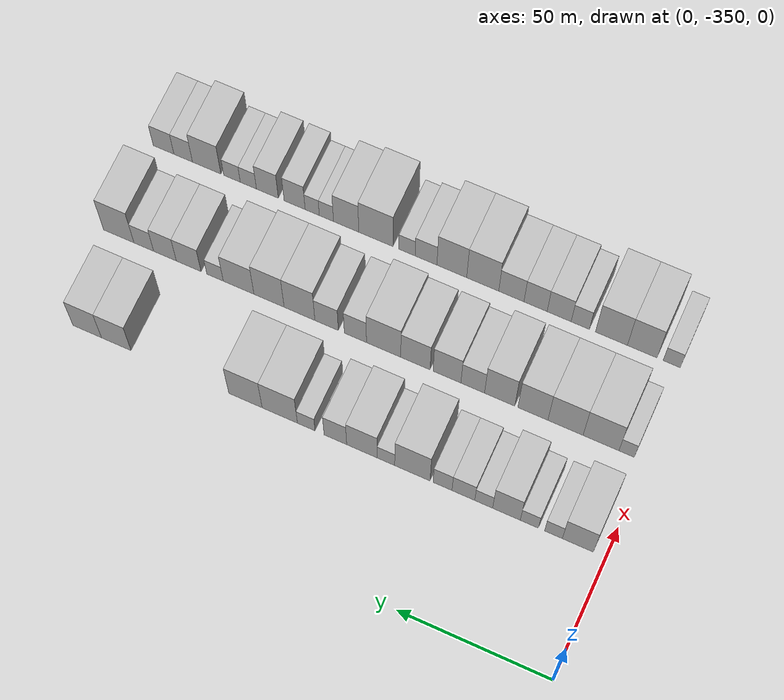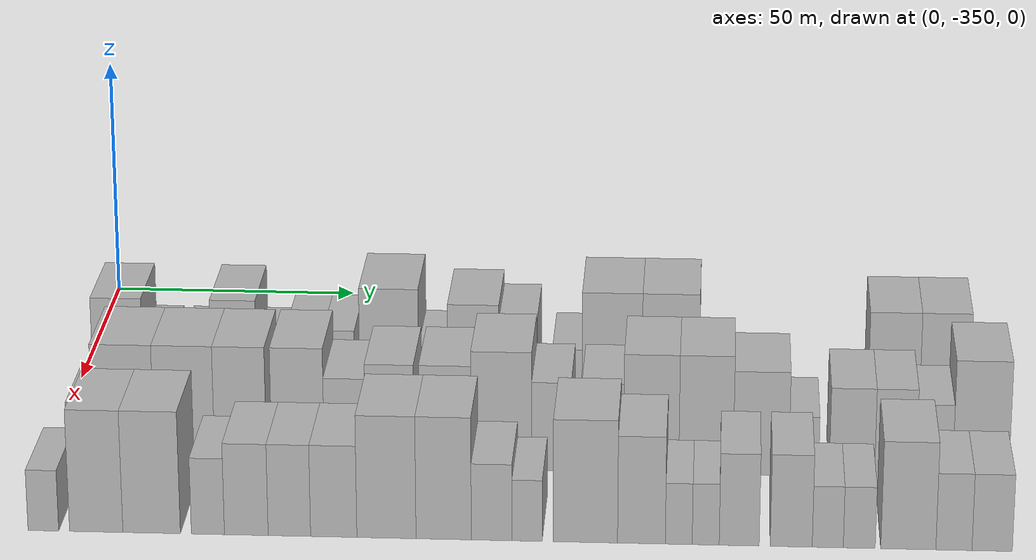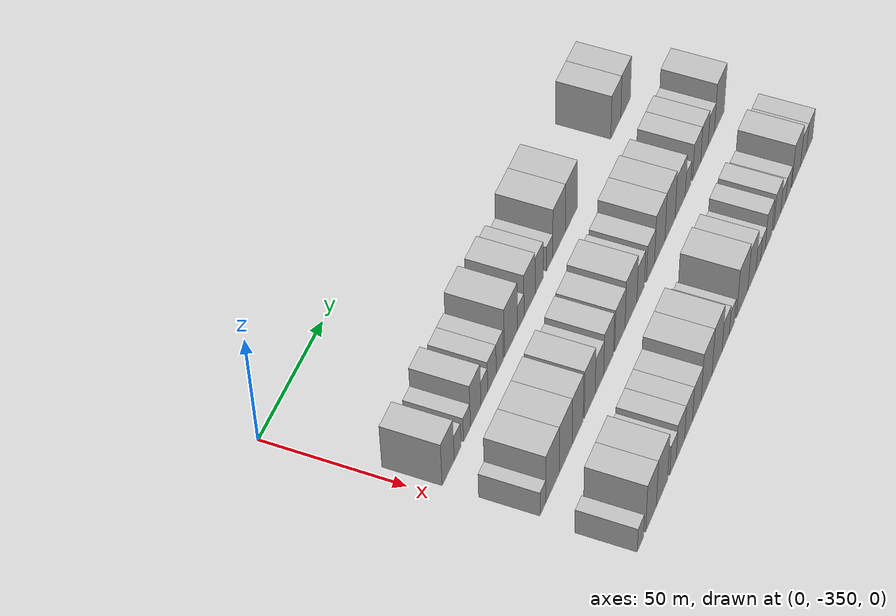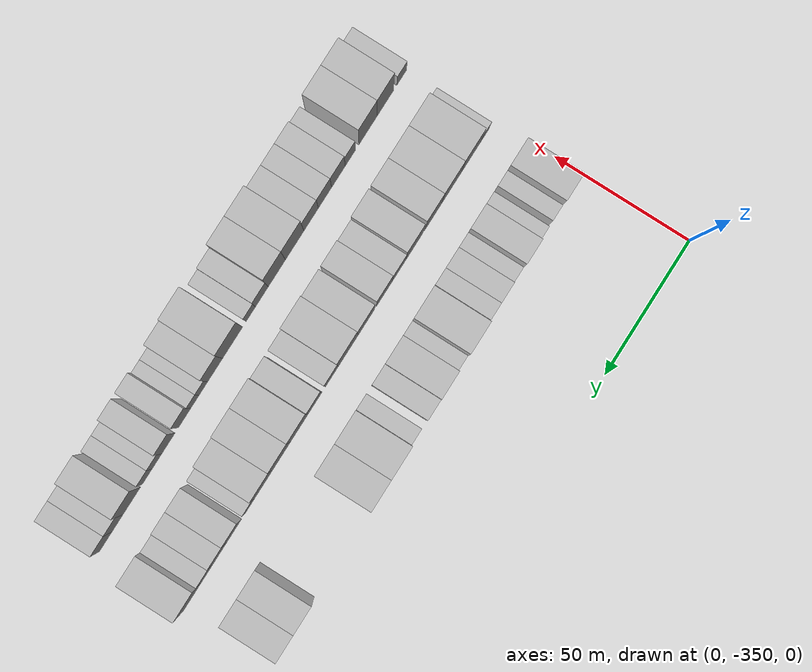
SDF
<sdf version="1.6">
 <world name="default">
  <model name="building_1">
   <static>1</static>
   <pose>50.0000 -341.0007 0 0.000000 0.000000 0.000000</pose>
   <link name="link">
    <pose>0 0 10.50 0 0 0</pose>
    <collision name="collision"><geometry><box><size>20.0000 9.9987 21.0000</size></box></geometry></collision>
    <visual name="visual">
     <cast_shadows>0</cast_shadows>
     <geometry><box><size>20.0000 9.9987 21.0000</size></box></geometry>
     <material>
      <script>
       <uri>model://HANNAS_wall/materials/scripts</uri>
       <uri>model://HANNAS_wall/materials/textures</uri>
       <name>vrc/HANNAS_wall</name>
      </script>
     </material>
    </visual>
   </link>
  </model>
  <model name="building_2">
   <static>1</static>
   <pose>50.0000 -333.1451 0 0.000000 0.000000 0.000000</pose>
   <link name="link">
    <pose>0 0 6.00 0 0 0</pose>
    <collision name="collision"><geometry><box><size>20.0000 5.7126 12.0000</size></box></geometry></collision>
    <visual name="visual">
     <cast_shadows>0</cast_shadows>
     <geometry><box><size>20.0000 5.7126 12.0000</size></box></geometry>
     <material>
      <script>
       <uri>model://HANNAS_wall/materials/scripts</uri>
       <uri>model://HANNAS_wall/materials/textures</uri>
       <name>vrc/HANNAS_wall</name>
      </script>
     </material>
    </visual>
   </link>
  </model>
  <model name="building_3">
   <static>1</static>
   <pose>50.0000 -325.3495 0 0.000000 0.000000 0.000000</pose>
   <link name="link">
    <pose>0 0 6.00 0 0 0</pose>
    <collision name="collision"><geometry><box><size>20.0000 5.8786 12.0000</size></box></geometry></collision>
    <visual name="visual">
     <cast_shadows>0</cast_shadows>
     <geometry><box><size>20.0000 5.8786 12.0000</size></box></geometry>
     <material>
      <script>
       <uri>model://HANNAS_wall/materials/scripts</uri>
       <uri>model://HANNAS_wall/materials/textures</uri>
       <name>vrc/HANNAS_wall</name>
      </script>
     </material>
    </visual>
   </link>
  </model>
  <model name="building_4">
   <static>1</static>
   <pose>50.0000 -317.9220 0 0.000000 0.000000 0.000000</pose>
   <link name="link">
    <pose>0 0 10.50 0 0 0</pose>
    <collision name="collision"><geometry><box><size>20.0000 8.9763 21.0000</size></box></geometry></collision>
    <visual name="visual">
     <cast_shadows>0</cast_shadows>
     <geometry><box><size>20.0000 8.9763 21.0000</size></box></geometry>
     <material>
      <script>
       <uri>model://HANNAS_wall/materials/scripts</uri>
       <uri>model://HANNAS_wall/materials/textures</uri>
       <name>vrc/HANNAS_wall</name>
      </script>
     </material>
    </visual>
   </link>
  </model>
  <model name="building_5">
   <static>1</static>
   <pose>50.0000 -310.5310 0 0.000000 0.000000 0.000000</pose>
   <link name="link">
    <pose>0 0 6.00 0 0 0</pose>
    <collision name="collision"><geometry><box><size>20.0000 5.8058 12.0000</size></box></geometry></collision>
    <visual name="visual">
     <cast_shadows>0</cast_shadows>
     <geometry><box><size>20.0000 5.8058 12.0000</size></box></geometry>
     <material>
      <script>
       <uri>model://HANNAS_wall/materials/scripts</uri>
       <uri>model://HANNAS_wall/materials/textures</uri>
       <name>vrc/HANNAS_wall</name>
      </script>
     </material>
    </visual>
   </link>
  </model>
  <model name="building_6">
   <static>1</static>
   <pose>50.0000 -303.9072 0 0.000000 0.000000 0.000000</pose>
   <link name="link">
    <pose>0 0 7.50 0 0 0</pose>
    <collision name="collision"><geometry><box><size>20.0000 7.4418 15.0000</size></box></geometry></collision>
    <visual name="visual">
     <cast_shadows>0</cast_shadows>
     <geometry><box><size>20.0000 7.4418 15.0000</size></box></geometry>
     <material>
      <script>
       <uri>model://HANNAS_wall/materials/scripts</uri>
       <uri>model://HANNAS_wall/materials/textures</uri>
       <name>vrc/HANNAS_wall</name>
      </script>
     </material>
    </visual>
   </link>
  </model>
  <model name="building_7">
   <static>1</static>
   <pose>50.0000 -297.1003 0 0.000000 0.000000 0.000000</pose>
   <link name="link">
    <pose>0 0 7.50 0 0 0</pose>
    <collision name="collision"><geometry><box><size>20.0000 6.1720 15.0000</size></box></geometry></collision>
    <visual name="visual">
     <cast_shadows>0</cast_shadows>
     <geometry><box><size>20.0000 6.1720 15.0000</size></box></geometry>
     <material>
      <script>
       <uri>model://HANNAS_wall/materials/scripts</uri>
       <uri>model://HANNAS_wall/materials/textures</uri>
       <name>vrc/HANNAS_wall</name>
      </script>
     </material>
    </visual>
   </link>
  </model>
  <model name="building_8">
   <static>1</static>
   <pose>50.0000 -287.2053 0 0.000000 0.000000 0.000000</pose>
   <link name="link">
    <pose>0 0 12.00 0 0 0</pose>
    <collision name="collision"><geometry><box><size>20.0000 11.6180 24.0000</size></box></geometry></collision>
    <visual name="visual">
     <cast_shadows>0</cast_shadows>
     <geometry><box><size>20.0000 11.6180 24.0000</size></box></geometry>
     <material>
      <script>
       <uri>model://HANNAS_wall/materials/scripts</uri>
       <uri>model://HANNAS_wall/materials/textures</uri>
       <name>vrc/HANNAS_wall</name>
      </script>
     </material>
    </visual>
   </link>
  </model>
  <model name="building_9">
   <static>1</static>
   <pose>50.0000 -278.5174 0 0.000000 0.000000 0.000000</pose>
   <link name="link">
    <pose>0 0 6.00 0 0 0</pose>
    <collision name="collision"><geometry><box><size>20.0000 5.7579 12.0000</size></box></geometry></collision>
    <visual name="visual">
     <cast_shadows>0</cast_shadows>
     <geometry><box><size>20.0000 5.7579 12.0000</size></box></geometry>
     <material>
      <script>
       <uri>model://HANNAS_wall/materials/scripts</uri>
       <uri>model://HANNAS_wall/materials/textures</uri>
       <name>vrc/HANNAS_wall</name>
      </script>
     </material>
    </visual>
   </link>
  </model>
  <model name="building_10">
   <static>1</static>
   <pose>50.0000 -270.5903 0 0.000000 0.000000 0.000000</pose>
   <link name="link">
    <pose>0 0 10.50 0 0 0</pose>
    <collision name="collision"><geometry><box><size>20.0000 10.0962 21.0000</size></box></geometry></collision>
    <visual name="visual">
     <cast_shadows>0</cast_shadows>
     <geometry><box><size>20.0000 10.0962 21.0000</size></box></geometry>
     <material>
      <script>
       <uri>model://HANNAS_wall/materials/scripts</uri>
       <uri>model://HANNAS_wall/materials/textures</uri>
       <name>vrc/HANNAS_wall</name>
      </script>
     </material>
    </visual>
   </link>
  </model>
  <model name="building_11">
   <static>1</static>
   <pose>50.0000 -261.7958 0 0.000000 0.000000 0.000000</pose>
   <link name="link">
    <pose>0 0 9.00 0 0 0</pose>
    <collision name="collision"><geometry><box><size>20.0000 7.4928 18.0000</size></box></geometry></collision>
    <visual name="visual">
     <cast_shadows>0</cast_shadows>
     <geometry><box><size>20.0000 7.4928 18.0000</size></box></geometry>
     <material>
      <script>
       <uri>model://HANNAS_wall/materials/scripts</uri>
       <uri>model://HANNAS_wall/materials/textures</uri>
       <name>vrc/HANNAS_wall</name>
      </script>
     </material>
    </visual>
   </link>
  </model>
  <model name="building_12">
   <static>1</static>
   <pose>50.0000 -252.1209 0 0.000000 0.000000 0.000000</pose>
   <link name="link">
    <pose>0 0 6.00 0 0 0</pose>
    <collision name="collision"><geometry><box><size>20.0000 5.8571 12.0000</size></box></geometry></collision>
    <visual name="visual">
     <cast_shadows>0</cast_shadows>
     <geometry><box><size>20.0000 5.8571 12.0000</size></box></geometry>
     <material>
      <script>
       <uri>model://HANNAS_wall/materials/scripts</uri>
       <uri>model://HANNAS_wall/materials/textures</uri>
       <name>vrc/HANNAS_wall</name>
      </script>
     </material>
    </visual>
   </link>
  </model>
  <model name="building_13">
   <static>1</static>
   <pose>50.0000 -243.2870 0 0.000000 0.000000 0.000000</pose>
   <link name="link">
    <pose>0 0 12.00 0 0 0</pose>
    <collision name="collision"><geometry><box><size>20.0000 11.8106 24.0000</size></box></geometry></collision>
    <visual name="visual">
     <cast_shadows>0</cast_shadows>
     <geometry><box><size>20.0000 11.8106 24.0000</size></box></geometry>
     <material>
      <script>
       <uri>model://HANNAS_wall/materials/scripts</uri>
       <uri>model://HANNAS_wall/materials/textures</uri>
       <name>vrc/HANNAS_wall</name>
      </script>
     </material>
    </visual>
   </link>
  </model>
  <model name="building_14">
   <static>1</static>
   <pose>50.0000 -231.7851 0 0.000000 0.000000 0.000000</pose>
   <link name="link">
    <pose>0 0 12.00 0 0 0</pose>
    <collision name="collision"><geometry><box><size>20.0000 11.1931 24.0000</size></box></geometry></collision>
    <visual name="visual">
     <cast_shadows>0</cast_shadows>
     <geometry><box><size>20.0000 11.1931 24.0000</size></box></geometry>
     <material>
      <script>
       <uri>model://HANNAS_wall/materials/scripts</uri>
       <uri>model://HANNAS_wall/materials/textures</uri>
       <name>vrc/HANNAS_wall</name>
      </script>
     </material>
    </visual>
   </link>
  </model>
  <model name="building_15">
   <static>1</static>
   <pose>50.0000 -188.0272 0 0.000000 0.000000 0.000000</pose>
   <link name="link">
    <pose>0 0 10.50 0 0 0</pose>
    <collision name="collision"><geometry><box><size>20.0000 10.1076 21.0000</size></box></geometry></collision>
    <visual name="visual">
     <cast_shadows>0</cast_shadows>
     <geometry><box><size>20.0000 10.1076 21.0000</size></box></geometry>
     <material>
      <script>
       <uri>model://HANNAS_wall/materials/scripts</uri>
       <uri>model://HANNAS_wall/materials/textures</uri>
       <name>vrc/HANNAS_wall</name>
      </script>
     </material>
    </visual>
   </link>
  </model>
  <model name="building_16">
   <static>1</static>
   <pose>50.0000 -178.0848 0 0.000000 0.000000 0.000000</pose>
   <link name="link">
    <pose>0 0 10.50 0 0 0</pose>
    <collision name="collision"><geometry><box><size>20.0000 9.7773 21.0000</size></box></geometry></collision>
    <visual name="visual">
     <cast_shadows>0</cast_shadows>
     <geometry><box><size>20.0000 9.7773 21.0000</size></box></geometry>
     <material>
      <script>
       <uri>model://HANNAS_wall/materials/scripts</uri>
       <uri>model://HANNAS_wall/materials/textures</uri>
       <name>vrc/HANNAS_wall</name>
      </script>
     </material>
    </visual>
   </link>
  </model>
  <model name="building_71">
   <static>1</static>
   <pose>82.0000 -343.4914 0 0.000000 0.000000 0.000000</pose>
   <link name="link">
    <pose>0 0 6.00 0 0 0</pose>
    <collision name="collision"><geometry><box><size>20.0000 5.0171 12.0000</size></box></geometry></collision>
    <visual name="visual">
     <cast_shadows>0</cast_shadows>
     <geometry><box><size>20.0000 5.0171 12.0000</size></box></geometry>
     <material>
      <script>
       <uri>model://HANNAS_wall/materials/scripts</uri>
       <uri>model://HANNAS_wall/materials/textures</uri>
       <name>vrc/HANNAS_wall</name>
      </script>
     </material>
    </visual>
   </link>
  </model>
  <model name="building_72">
   <static>1</static>
   <pose>82.0000 -335.1401 0 0.000000 0.000000 0.000000</pose>
   <link name="link">
    <pose>0 0 12.00 0 0 0</pose>
    <collision name="collision"><geometry><box><size>20.0000 11.6856 24.0000</size></box></geometry></collision>
    <visual name="visual">
     <cast_shadows>0</cast_shadows>
     <geometry><box><size>20.0000 11.6856 24.0000</size></box></geometry>
     <material>
      <script>
       <uri>model://HANNAS_wall/materials/scripts</uri>
       <uri>model://HANNAS_wall/materials/textures</uri>
       <name>vrc/HANNAS_wall</name>
      </script>
     </material>
    </visual>
   </link>
  </model>
  <model name="building_73">
   <static>1</static>
   <pose>82.0000 -323.5394 0 0.000000 0.000000 0.000000</pose>
   <link name="link">
    <pose>0 0 12.00 0 0 0</pose>
    <collision name="collision"><geometry><box><size>20.0000 11.5159 24.0000</size></box></geometry></collision>
    <visual name="visual">
     <cast_shadows>0</cast_shadows>
     <geometry><box><size>20.0000 11.5159 24.0000</size></box></geometry>
     <material>
      <script>
       <uri>model://HANNAS_wall/materials/scripts</uri>
       <uri>model://HANNAS_wall/materials/textures</uri>
       <name>vrc/HANNAS_wall</name>
      </script>
     </material>
    </visual>
   </link>
  </model>
  <model name="building_74">
   <static>1</static>
   <pose>82.0000 -312.8279 0 0.000000 0.000000 0.000000</pose>
   <link name="link">
    <pose>0 0 12.00 0 0 0</pose>
    <collision name="collision"><geometry><box><size>20.0000 9.9071 24.0000</size></box></geometry></collision>
    <visual name="visual">
     <cast_shadows>0</cast_shadows>
     <geometry><box><size>20.0000 9.9071 24.0000</size></box></geometry>
     <material>
      <script>
       <uri>model://HANNAS_wall/materials/scripts</uri>
       <uri>model://HANNAS_wall/materials/textures</uri>
       <name>vrc/HANNAS_wall</name>
      </script>
     </material>
    </visual>
   </link>
  </model>
  <model name="building_75">
   <static>1</static>
   <pose>82.0000 -301.8781 0 0.000000 0.000000 0.000000</pose>
   <link name="link">
    <pose>0 0 12.00 0 0 0</pose>
    <collision name="collision"><geometry><box><size>20.0000 9.9926 24.0000</size></box></geometry></collision>
    <visual name="visual">
     <cast_shadows>0</cast_shadows>
     <geometry><box><size>20.0000 9.9926 24.0000</size></box></geometry>
     <material>
      <script>
       <uri>model://HANNAS_wall/materials/scripts</uri>
       <uri>model://HANNAS_wall/materials/textures</uri>
       <name>vrc/HANNAS_wall</name>
      </script>
     </material>
    </visual>
   </link>
  </model>
  <model name="building_76">
   <static>1</static>
   <pose>82.0000 -292.9610 0 0.000000 0.000000 0.000000</pose>
   <link name="link">
    <pose>0 0 9.00 0 0 0</pose>
    <collision name="collision"><geometry><box><size>20.0000 7.8414 18.0000</size></box></geometry></collision>
    <visual name="visual">
     <cast_shadows>0</cast_shadows>
     <geometry><box><size>20.0000 7.8414 18.0000</size></box></geometry>
     <material>
      <script>
       <uri>model://HANNAS_wall/materials/scripts</uri>
       <uri>model://HANNAS_wall/materials/textures</uri>
       <name>vrc/HANNAS_wall</name>
      </script>
     </material>
    </visual>
   </link>
  </model>
  <model name="building_77">
   <static>1</static>
   <pose>82.0000 -284.4175 0 0.000000 0.000000 0.000000</pose>
   <link name="link">
    <pose>0 0 10.50 0 0 0</pose>
    <collision name="collision"><geometry><box><size>20.0000 9.2457 21.0000</size></box></geometry></collision>
    <visual name="visual">
     <cast_shadows>0</cast_shadows>
     <geometry><box><size>20.0000 9.2457 21.0000</size></box></geometry>
     <material>
      <script>
       <uri>model://HANNAS_wall/materials/scripts</uri>
       <uri>model://HANNAS_wall/materials/textures</uri>
       <name>vrc/HANNAS_wall</name>
      </script>
     </material>
    </visual>
   </link>
  </model>
  <model name="building_78">
   <static>1</static>
   <pose>82.0000 -273.8890 0 0.000000 0.000000 0.000000</pose>
   <link name="link">
    <pose>0 0 10.50 0 0 0</pose>
    <collision name="collision"><geometry><box><size>20.0000 9.8111 21.0000</size></box></geometry></collision>
    <visual name="visual">
     <cast_shadows>0</cast_shadows>
     <geometry><box><size>20.0000 9.8111 21.0000</size></box></geometry>
     <material>
      <script>
       <uri>model://HANNAS_wall/materials/scripts</uri>
       <uri>model://HANNAS_wall/materials/textures</uri>
       <name>vrc/HANNAS_wall</name>
      </script>
     </material>
    </visual>
   </link>
  </model>
  <model name="building_79">
   <static>1</static>
   <pose>82.0000 -263.2456 0 0.000000 0.000000 0.000000</pose>
   <link name="link">
    <pose>0 0 12.00 0 0 0</pose>
    <collision name="collision"><geometry><box><size>20.0000 11.4757 24.0000</size></box></geometry></collision>
    <visual name="visual">
     <cast_shadows>0</cast_shadows>
     <geometry><box><size>20.0000 11.4757 24.0000</size></box></geometry>
     <material>
      <script>
       <uri>model://HANNAS_wall/materials/scripts</uri>
       <uri>model://HANNAS_wall/materials/textures</uri>
       <name>vrc/HANNAS_wall</name>
      </script>
     </material>
    </visual>
   </link>
  </model>
  <model name="building_80">
   <static>1</static>
   <pose>82.0000 -253.7809 0 0.000000 0.000000 0.000000</pose>
   <link name="link">
    <pose>0 0 9.00 0 0 0</pose>
    <collision name="collision"><geometry><box><size>20.0000 7.4538 18.0000</size></box></geometry></collision>
    <visual name="visual">
     <cast_shadows>0</cast_shadows>
     <geometry><box><size>20.0000 7.4538 18.0000</size></box></geometry>
     <material>
      <script>
       <uri>model://HANNAS_wall/materials/scripts</uri>
       <uri>model://HANNAS_wall/materials/textures</uri>
       <name>vrc/HANNAS_wall</name>
      </script>
     </material>
    </visual>
   </link>
  </model>
  <model name="building_81">
   <static>1</static>
   <pose>82.0000 -244.0854 0 0.000000 0.000000 0.000000</pose>
   <link name="link">
    <pose>0 0 9.00 0 0 0</pose>
    <collision name="collision"><geometry><box><size>20.0000 7.9372 18.0000</size></box></geometry></collision>
    <visual name="visual">
     <cast_shadows>0</cast_shadows>
     <geometry><box><size>20.0000 7.9372 18.0000</size></box></geometry>
     <material>
      <script>
       <uri>model://HANNAS_wall/materials/scripts</uri>
       <uri>model://HANNAS_wall/materials/textures</uri>
       <name>vrc/HANNAS_wall</name>
      </script>
     </material>
    </visual>
   </link>
  </model>
  <model name="building_82">
   <static>1</static>
   <pose>82.0000 -234.8951 0 0.000000 0.000000 0.000000</pose>
   <link name="link">
    <pose>0 0 12.00 0 0 0</pose>
    <collision name="collision"><geometry><box><size>20.0000 10.4434 24.0000</size></box></geometry></collision>
    <visual name="visual">
     <cast_shadows>0</cast_shadows>
     <geometry><box><size>20.0000 10.4434 24.0000</size></box></geometry>
     <material>
      <script>
       <uri>model://HANNAS_wall/materials/scripts</uri>
       <uri>model://HANNAS_wall/materials/textures</uri>
       <name>vrc/HANNAS_wall</name>
      </script>
     </material>
    </visual>
   </link>
  </model>
  <model name="building_83">
   <static>1</static>
   <pose>82.0000 -224.5434 0 0.000000 0.000000 0.000000</pose>
   <link name="link">
    <pose>0 0 12.00 0 0 0</pose>
    <collision name="collision"><geometry><box><size>20.0000 10.2600 24.0000</size></box></geometry></collision>
    <visual name="visual">
     <cast_shadows>0</cast_shadows>
     <geometry><box><size>20.0000 10.2600 24.0000</size></box></geometry>
     <material>
      <script>
       <uri>model://HANNAS_wall/materials/scripts</uri>
       <uri>model://HANNAS_wall/materials/textures</uri>
       <name>vrc/HANNAS_wall</name>
      </script>
     </material>
    </visual>
   </link>
  </model>
  <model name="building_84">
   <static>1</static>
   <pose>82.0000 -214.1697 0 0.000000 0.000000 0.000000</pose>
   <link name="link">
    <pose>0 0 10.50 0 0 0</pose>
    <collision name="collision"><geometry><box><size>20.0000 10.4873 21.0000</size></box></geometry></collision>
    <visual name="visual">
     <cast_shadows>0</cast_shadows>
     <geometry><box><size>20.0000 10.4873 21.0000</size></box></geometry>
     <material>
      <script>
       <uri>model://HANNAS_wall/materials/scripts</uri>
       <uri>model://HANNAS_wall/materials/textures</uri>
       <name>vrc/HANNAS_wall</name>
      </script>
     </material>
    </visual>
   </link>
  </model>
  <model name="building_85">
   <static>1</static>
   <pose>82.0000 -206.1153 0 0.000000 0.000000 0.000000</pose>
   <link name="link">
    <pose>0 0 6.00 0 0 0</pose>
    <collision name="collision"><geometry><box><size>20.0000 5.6216 12.0000</size></box></geometry></collision>
    <visual name="visual">
     <cast_shadows>0</cast_shadows>
     <geometry><box><size>20.0000 5.6216 12.0000</size></box></geometry>
     <material>
      <script>
       <uri>model://HANNAS_wall/materials/scripts</uri>
       <uri>model://HANNAS_wall/materials/textures</uri>
       <name>vrc/HANNAS_wall</name>
      </script>
     </material>
    </visual>
   </link>
  </model>
  <model name="building_86">
   <static>1</static>
   <pose>82.0000 -197.0459 0 0.000000 0.000000 0.000000</pose>
   <link name="link">
    <pose>0 0 9.00 0 0 0</pose>
    <collision name="collision"><geometry><box><size>20.0000 8.5171 18.0000</size></box></geometry></collision>
    <visual name="visual">
     <cast_shadows>0</cast_shadows>
     <geometry><box><size>20.0000 8.5171 18.0000</size></box></geometry>
     <material>
      <script>
       <uri>model://HANNAS_wall/materials/scripts</uri>
       <uri>model://HANNAS_wall/materials/textures</uri>
       <name>vrc/HANNAS_wall</name>
      </script>
     </material>
    </visual>
   </link>
  </model>
  <model name="building_87">
   <static>1</static>
   <pose>82.0000 -188.8808 0 0.000000 0.000000 0.000000</pose>
   <link name="link">
    <pose>0 0 9.00 0 0 0</pose>
    <collision name="collision"><geometry><box><size>20.0000 7.8130 18.0000</size></box></geometry></collision>
    <visual name="visual">
     <cast_shadows>0</cast_shadows>
     <geometry><box><size>20.0000 7.8130 18.0000</size></box></geometry>
     <material>
      <script>
       <uri>model://HANNAS_wall/materials/scripts</uri>
       <uri>model://HANNAS_wall/materials/textures</uri>
       <name>vrc/HANNAS_wall</name>
      </script>
     </material>
    </visual>
   </link>
  </model>
  <model name="building_88">
   <static>1</static>
   <pose>82.0000 -181.5605 0 0.000000 0.000000 0.000000</pose>
   <link name="link">
    <pose>0 0 7.50 0 0 0</pose>
    <collision name="collision"><geometry><box><size>20.0000 6.8278 15.0000</size></box></geometry></collision>
    <visual name="visual">
     <cast_shadows>0</cast_shadows>
     <geometry><box><size>20.0000 6.8278 15.0000</size></box></geometry>
     <material>
      <script>
       <uri>model://HANNAS_wall/materials/scripts</uri>
       <uri>model://HANNAS_wall/materials/textures</uri>
       <name>vrc/HANNAS_wall</name>
      </script>
     </material>
    </visual>
   </link>
  </model>
  <model name="building_89">
   <static>1</static>
   <pose>82.0000 -172.8819 0 0.000000 0.000000 0.000000</pose>
   <link name="link">
    <pose>0 0 12.00 0 0 0</pose>
    <collision name="collision"><geometry><box><size>20.0000 10.5293 24.0000</size></box></geometry></collision>
    <visual name="visual">
     <cast_shadows>0</cast_shadows>
     <geometry><box><size>20.0000 10.5293 24.0000</size></box></geometry>
     <material>
      <script>
       <uri>model://HANNAS_wall/materials/scripts</uri>
       <uri>model://HANNAS_wall/materials/textures</uri>
       <name>vrc/HANNAS_wall</name>
      </script>
     </material>
    </visual>
   </link>
  </model>
  <model name="building_148">
   <static>1</static>
   <pose>114.0000 -345.1779 0 0.000000 0.000000 0.000000</pose>
   <link name="link">
    <pose>0 0 6.00 0 0 0</pose>
    <collision name="collision"><geometry><box><size>20.0000 5.6442 12.0000</size></box></geometry></collision>
    <visual name="visual">
     <cast_shadows>0</cast_shadows>
     <geometry><box><size>20.0000 5.6442 12.0000</size></box></geometry>
     <material>
      <script>
       <uri>model://HANNAS_wall/materials/scripts</uri>
       <uri>model://HANNAS_wall/materials/textures</uri>
       <name>vrc/HANNAS_wall</name>
      </script>
     </material>
    </visual>
   </link>
  </model>
  <model name="building_149">
   <static>1</static>
   <pose>114.0000 -335.4553 0 0.000000 0.000000 0.000000</pose>
   <link name="link">
    <pose>0 0 12.00 0 0 0</pose>
    <collision name="collision"><geometry><box><size>20.0000 9.8010 24.0000</size></box></geometry></collision>
    <visual name="visual">
     <cast_shadows>0</cast_shadows>
     <geometry><box><size>20.0000 9.8010 24.0000</size></box></geometry>
     <material>
      <script>
       <uri>model://HANNAS_wall/materials/scripts</uri>
       <uri>model://HANNAS_wall/materials/textures</uri>
       <name>vrc/HANNAS_wall</name>
      </script>
     </material>
    </visual>
   </link>
  </model>
  <model name="building_150">
   <static>1</static>
   <pose>114.0000 -325.2797 0 0.000000 0.000000 0.000000</pose>
   <link name="link">
    <pose>0 0 12.00 0 0 0</pose>
    <collision name="collision"><geometry><box><size>20.0000 10.5503 24.0000</size></box></geometry></collision>
    <visual name="visual">
     <cast_shadows>0</cast_shadows>
     <geometry><box><size>20.0000 10.5503 24.0000</size></box></geometry>
     <material>
      <script>
       <uri>model://HANNAS_wall/materials/scripts</uri>
       <uri>model://HANNAS_wall/materials/textures</uri>
       <name>vrc/HANNAS_wall</name>
      </script>
     </material>
    </visual>
   </link>
  </model>
  <model name="building_151">
   <static>1</static>
   <pose>114.0000 -314.9714 0 0.000000 0.000000 0.000000</pose>
   <link name="link">
    <pose>0 0 7.50 0 0 0</pose>
    <collision name="collision"><geometry><box><size>20.0000 6.0662 15.0000</size></box></geometry></collision>
    <visual name="visual">
     <cast_shadows>0</cast_shadows>
     <geometry><box><size>20.0000 6.0662 15.0000</size></box></geometry>
     <material>
      <script>
       <uri>model://HANNAS_wall/materials/scripts</uri>
       <uri>model://HANNAS_wall/materials/textures</uri>
       <name>vrc/HANNAS_wall</name>
      </script>
     </material>
    </visual>
   </link>
  </model>
  <model name="building_152">
   <static>1</static>
   <pose>114.0000 -307.9363 0 0.000000 0.000000 0.000000</pose>
   <link name="link">
    <pose>0 0 9.00 0 0 0</pose>
    <collision name="collision"><geometry><box><size>20.0000 8.0040 18.0000</size></box></geometry></collision>
    <visual name="visual">
     <cast_shadows>0</cast_shadows>
     <geometry><box><size>20.0000 8.0040 18.0000</size></box></geometry>
     <material>
      <script>
       <uri>model://HANNAS_wall/materials/scripts</uri>
       <uri>model://HANNAS_wall/materials/textures</uri>
       <name>vrc/HANNAS_wall</name>
      </script>
     </material>
    </visual>
   </link>
  </model>
  <model name="building_153">
   <static>1</static>
   <pose>114.0000 -300.0564 0 0.000000 0.000000 0.000000</pose>
   <link name="link">
    <pose>0 0 9.00 0 0 0</pose>
    <collision name="collision"><geometry><box><size>20.0000 7.7558 18.0000</size></box></geometry></collision>
    <visual name="visual">
     <cast_shadows>0</cast_shadows>
     <geometry><box><size>20.0000 7.7558 18.0000</size></box></geometry>
     <material>
      <script>
       <uri>model://HANNAS_wall/materials/scripts</uri>
       <uri>model://HANNAS_wall/materials/textures</uri>
       <name>vrc/HANNAS_wall</name>
      </script>
     </material>
    </visual>
   </link>
  </model>
  <model name="building_154">
   <static>1</static>
   <pose>114.0000 -291.9495 0 0.000000 0.000000 0.000000</pose>
   <link name="link">
    <pose>0 0 9.00 0 0 0</pose>
    <collision name="collision"><geometry><box><size>20.0000 8.4580 18.0000</size></box></geometry></collision>
    <visual name="visual">
     <cast_shadows>0</cast_shadows>
     <geometry><box><size>20.0000 8.4580 18.0000</size></box></geometry>
     <material>
      <script>
       <uri>model://HANNAS_wall/materials/scripts</uri>
       <uri>model://HANNAS_wall/materials/textures</uri>
       <name>vrc/HANNAS_wall</name>
      </script>
     </material>
    </visual>
   </link>
  </model>
  <model name="building_155">
   <static>1</static>
   <pose>114.0000 -282.3269 0 0.000000 0.000000 0.000000</pose>
   <link name="link">
    <pose>0 0 12.00 0 0 0</pose>
    <collision name="collision"><geometry><box><size>20.0000 10.7873 24.0000</size></box></geometry></collision>
    <visual name="visual">
     <cast_shadows>0</cast_shadows>
     <geometry><box><size>20.0000 10.7873 24.0000</size></box></geometry>
     <material>
      <script>
       <uri>model://HANNAS_wall/materials/scripts</uri>
       <uri>model://HANNAS_wall/materials/textures</uri>
       <name>vrc/HANNAS_wall</name>
      </script>
     </material>
    </visual>
   </link>
  </model>
  <model name="building_156">
   <static>1</static>
   <pose>114.0000 -271.8969 0 0.000000 0.000000 0.000000</pose>
   <link name="link">
    <pose>0 0 12.00 0 0 0</pose>
    <collision name="collision"><geometry><box><size>20.0000 10.0726 24.0000</size></box></geometry></collision>
    <visual name="visual">
     <cast_shadows>0</cast_shadows>
     <geometry><box><size>20.0000 10.0726 24.0000</size></box></geometry>
     <material>
      <script>
       <uri>model://HANNAS_wall/materials/scripts</uri>
       <uri>model://HANNAS_wall/materials/textures</uri>
       <name>vrc/HANNAS_wall</name>
      </script>
     </material>
    </visual>
   </link>
  </model>
  <model name="building_157">
   <static>1</static>
   <pose>114.0000 -263.1702 0 0.000000 0.000000 0.000000</pose>
   <link name="link">
    <pose>0 0 7.50 0 0 0</pose>
    <collision name="collision"><geometry><box><size>20.0000 7.3808 15.0000</size></box></geometry></collision>
    <visual name="visual">
     <cast_shadows>0</cast_shadows>
     <geometry><box><size>20.0000 7.3808 15.0000</size></box></geometry>
     <material>
      <script>
       <uri>model://HANNAS_wall/materials/scripts</uri>
       <uri>model://HANNAS_wall/materials/textures</uri>
       <name>vrc/HANNAS_wall</name>
      </script>
     </material>
    </visual>
   </link>
  </model>
  <model name="building_158">
   <static>1</static>
   <pose>114.0000 -256.7243 0 0.000000 0.000000 0.000000</pose>
   <link name="link">
    <pose>0 0 6.00 0 0 0</pose>
    <collision name="collision"><geometry><box><size>20.0000 5.5110 12.0000</size></box></geometry></collision>
    <visual name="visual">
     <cast_shadows>0</cast_shadows>
     <geometry><box><size>20.0000 5.5110 12.0000</size></box></geometry>
     <material>
      <script>
       <uri>model://HANNAS_wall/materials/scripts</uri>
       <uri>model://HANNAS_wall/materials/textures</uri>
       <name>vrc/HANNAS_wall</name>
      </script>
     </material>
    </visual>
   </link>
  </model>
  <model name="building_159">
   <static>1</static>
   <pose>114.0000 -246.1297 0 0.000000 0.000000 0.000000</pose>
   <link name="link">
    <pose>0 0 12.00 0 0 0</pose>
    <collision name="collision"><geometry><box><size>20.0000 11.6784 24.0000</size></box></geometry></collision>
    <visual name="visual">
     <cast_shadows>0</cast_shadows>
     <geometry><box><size>20.0000 11.6784 24.0000</size></box></geometry>
     <material>
      <script>
       <uri>model://HANNAS_wall/materials/scripts</uri>
       <uri>model://HANNAS_wall/materials/textures</uri>
       <name>vrc/HANNAS_wall</name>
      </script>
     </material>
    </visual>
   </link>
  </model>
  <model name="building_160">
   <static>1</static>
   <pose>114.0000 -235.9593 0 0.000000 0.000000 0.000000</pose>
   <link name="link">
    <pose>0 0 10.50 0 0 0</pose>
    <collision name="collision"><geometry><box><size>20.0000 8.6624 21.0000</size></box></geometry></collision>
    <visual name="visual">
     <cast_shadows>0</cast_shadows>
     <geometry><box><size>20.0000 8.6624 21.0000</size></box></geometry>
     <material>
      <script>
       <uri>model://HANNAS_wall/materials/scripts</uri>
       <uri>model://HANNAS_wall/materials/textures</uri>
       <name>vrc/HANNAS_wall</name>
      </script>
     </material>
    </visual>
   </link>
  </model>
  <model name="building_161">
   <static>1</static>
   <pose>114.0000 -229.1909 0 0.000000 0.000000 0.000000</pose>
   <link name="link">
    <pose>0 0 6.00 0 0 0</pose>
    <collision name="collision"><geometry><box><size>20.0000 4.8745 12.0000</size></box></geometry></collision>
    <visual name="visual">
     <cast_shadows>0</cast_shadows>
     <geometry><box><size>20.0000 4.8745 12.0000</size></box></geometry>
     <material>
      <script>
       <uri>model://HANNAS_wall/materials/scripts</uri>
       <uri>model://HANNAS_wall/materials/textures</uri>
       <name>vrc/HANNAS_wall</name>
      </script>
     </material>
    </visual>
   </link>
  </model>
  <model name="building_162">
   <static>1</static>
   <pose>114.0000 -224.3168 0 0.000000 0.000000 0.000000</pose>
   <link name="link">
    <pose>0 0 6.00 0 0 0</pose>
    <collision name="collision"><geometry><box><size>20.0000 4.8736 12.0000</size></box></geometry></collision>
    <visual name="visual">
     <cast_shadows>0</cast_shadows>
     <geometry><box><size>20.0000 4.8736 12.0000</size></box></geometry>
     <material>
      <script>
       <uri>model://HANNAS_wall/materials/scripts</uri>
       <uri>model://HANNAS_wall/materials/textures</uri>
       <name>vrc/HANNAS_wall</name>
      </script>
     </material>
    </visual>
   </link>
  </model>
  <model name="building_163">
   <static>1</static>
   <pose>114.0000 -218.2630 0 0.000000 0.000000 0.000000</pose>
   <link name="link">
    <pose>0 0 9.00 0 0 0</pose>
    <collision name="collision"><geometry><box><size>20.0000 7.2341 18.0000</size></box></geometry></collision>
    <visual name="visual">
     <cast_shadows>0</cast_shadows>
     <geometry><box><size>20.0000 7.2341 18.0000</size></box></geometry>
     <material>
      <script>
       <uri>model://HANNAS_wall/materials/scripts</uri>
       <uri>model://HANNAS_wall/materials/textures</uri>
       <name>vrc/HANNAS_wall</name>
      </script>
     </material>
    </visual>
   </link>
  </model>
  <model name="building_164">
   <static>1</static>
   <pose>114.0000 -208.8531 0 0.000000 0.000000 0.000000</pose>
   <link name="link">
    <pose>0 0 9.00 0 0 0</pose>
    <collision name="collision"><geometry><box><size>20.0000 7.5858 18.0000</size></box></geometry></collision>
    <visual name="visual">
     <cast_shadows>0</cast_shadows>
     <geometry><box><size>20.0000 7.5858 18.0000</size></box></geometry>
     <material>
      <script>
       <uri>model://HANNAS_wall/materials/scripts</uri>
       <uri>model://HANNAS_wall/materials/textures</uri>
       <name>vrc/HANNAS_wall</name>
      </script>
     </material>
    </visual>
   </link>
  </model>
  <model name="building_165">
   <static>1</static>
   <pose>114.0000 -202.2564 0 0.000000 0.000000 0.000000</pose>
   <link name="link">
    <pose>0 0 6.00 0 0 0</pose>
    <collision name="collision"><geometry><box><size>20.0000 5.6076 12.0000</size></box></geometry></collision>
    <visual name="visual">
     <cast_shadows>0</cast_shadows>
     <geometry><box><size>20.0000 5.6076 12.0000</size></box></geometry>
     <material>
      <script>
       <uri>model://HANNAS_wall/materials/scripts</uri>
       <uri>model://HANNAS_wall/materials/textures</uri>
       <name>vrc/HANNAS_wall</name>
      </script>
     </material>
    </visual>
   </link>
  </model>
  <model name="building_166">
   <static>1</static>
   <pose>114.0000 -196.5730 0 0.000000 0.000000 0.000000</pose>
   <link name="link">
    <pose>0 0 6.00 0 0 0</pose>
    <collision name="collision"><geometry><box><size>20.0000 5.7591 12.0000</size></box></geometry></collision>
    <visual name="visual">
     <cast_shadows>0</cast_shadows>
     <geometry><box><size>20.0000 5.7591 12.0000</size></box></geometry>
     <material>
      <script>
       <uri>model://HANNAS_wall/materials/scripts</uri>
       <uri>model://HANNAS_wall/materials/textures</uri>
       <name>vrc/HANNAS_wall</name>
      </script>
     </material>
    </visual>
   </link>
  </model>
  <model name="building_167">
   <static>1</static>
   <pose>114.0000 -187.7369 0 0.000000 0.000000 0.000000</pose>
   <link name="link">
    <pose>0 0 10.50 0 0 0</pose>
    <collision name="collision"><geometry><box><size>20.0000 9.9131 21.0000</size></box></geometry></collision>
    <visual name="visual">
     <cast_shadows>0</cast_shadows>
     <geometry><box><size>20.0000 9.9131 21.0000</size></box></geometry>
     <material>
      <script>
       <uri>model://HANNAS_wall/materials/scripts</uri>
       <uri>model://HANNAS_wall/materials/textures</uri>
       <name>vrc/HANNAS_wall</name>
      </script>
     </material>
    </visual>
   </link>
  </model>
  <model name="building_168">
   <static>1</static>
   <pose>114.0000 -179.5307 0 0.000000 0.000000 0.000000</pose>
   <link name="link">
    <pose>0 0 7.50 0 0 0</pose>
    <collision name="collision"><geometry><box><size>20.0000 6.4993 15.0000</size></box></geometry></collision>
    <visual name="visual">
     <cast_shadows>0</cast_shadows>
     <geometry><box><size>20.0000 6.4993 15.0000</size></box></geometry>
     <material>
      <script>
       <uri>model://HANNAS_wall/materials/scripts</uri>
       <uri>model://HANNAS_wall/materials/textures</uri>
       <name>vrc/HANNAS_wall</name>
      </script>
     </material>
    </visual>
   </link>
  </model>
  <model name="building_169">
   <static>1</static>
   <pose>114.0000 -172.6559 0 0.000000 0.000000 0.000000</pose>
   <link name="link">
    <pose>0 0 7.50 0 0 0</pose>
    <collision name="collision"><geometry><box><size>20.0000 7.2504 15.0000</size></box></geometry></collision>
    <visual name="visual">
     <cast_shadows>0</cast_shadows>
     <geometry><box><size>20.0000 7.2504 15.0000</size></box></geometry>
     <material>
      <script>
       <uri>model://HANNAS_wall/materials/scripts</uri>
       <uri>model://HANNAS_wall/materials/textures</uri>
       <name>vrc/HANNAS_wall</name>
      </script>
     </material>
    </visual>
   </link>
  </model>
 </world>
</sdf>
